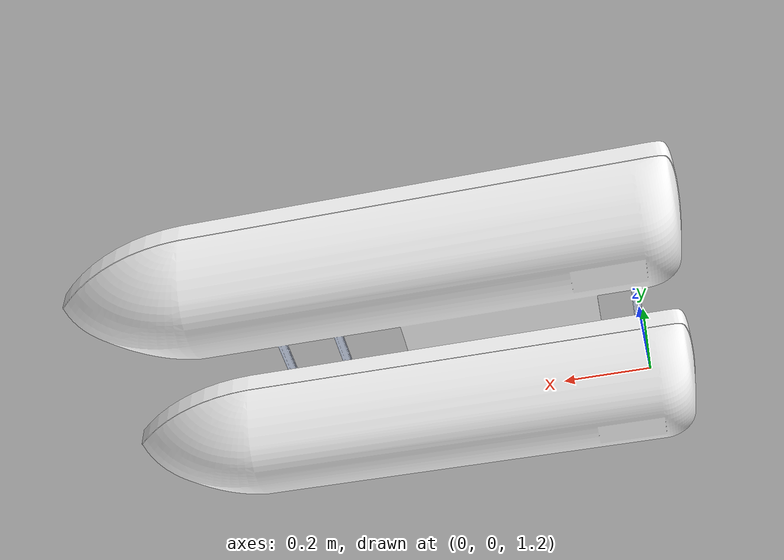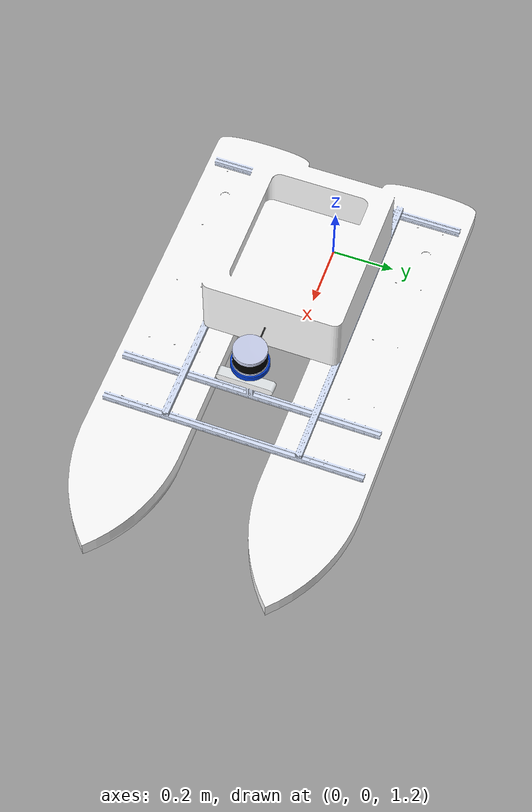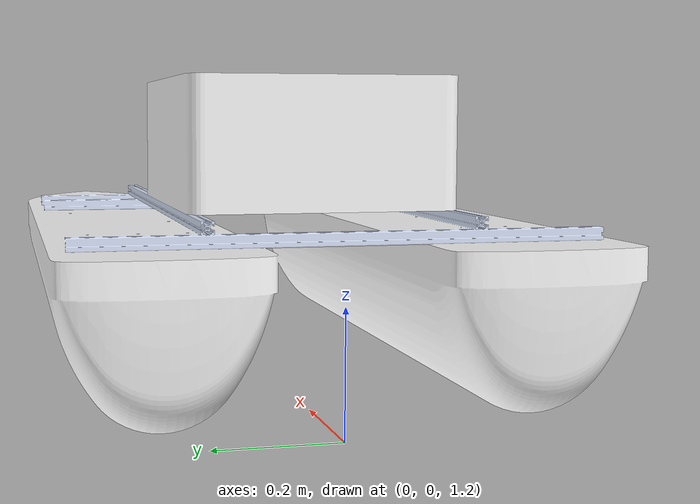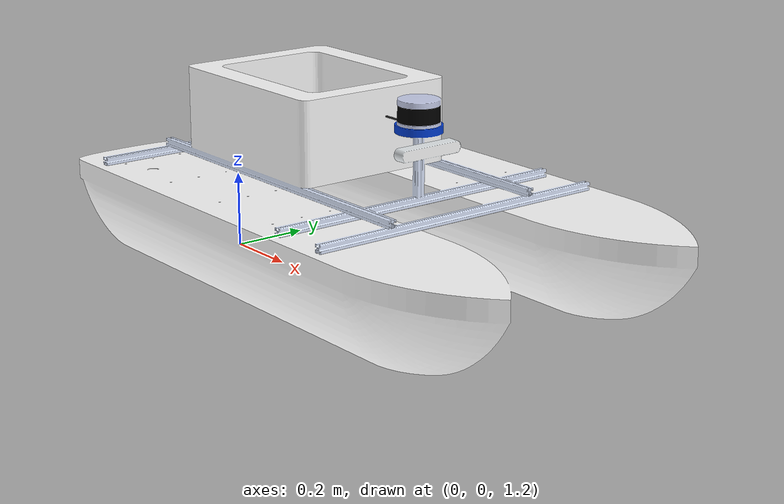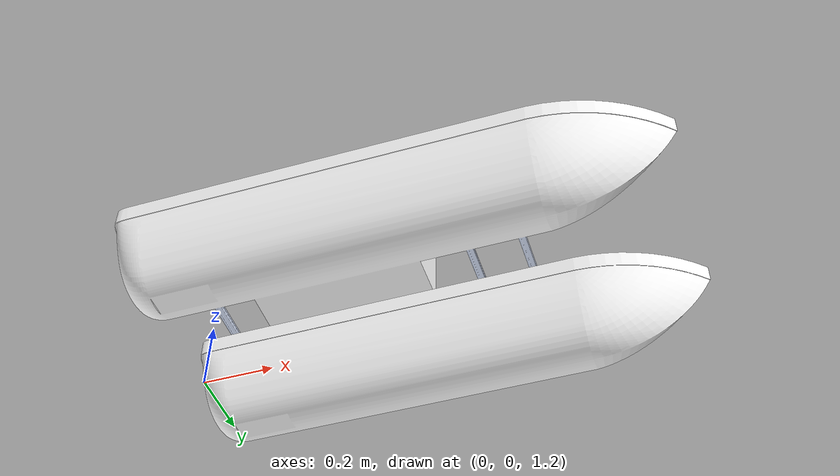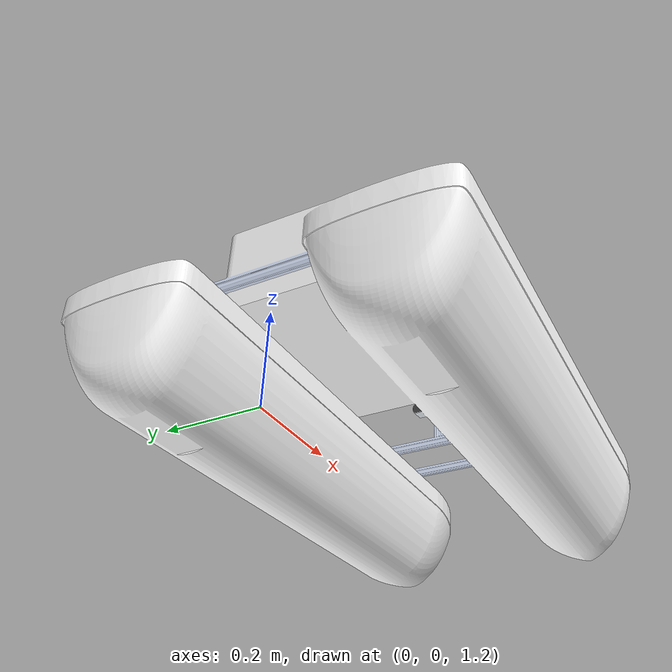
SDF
<?xml version='1.0'?>
<sdf version='1.6'>
  <!-- Note: The meshes in this file do not actually exist.
  This file is used for testing relative URIs -->
  <model name='usv'>
    <pose>0 0 1.5 0 0 0</pose>
    <link name='L1'>
      <visual name='V'>
        <geometry>
          <mesh>
            <uri>meshes/usv.dae</uri>
          </mesh>
        </geometry>
      </visual>
      <collision name='C'>
        <geometry>
          <mesh>
            <uri>meshes/usv.dae</uri>
          </mesh>
        </geometry>
      </collision>
    </link>
  </model>
</sdf>
